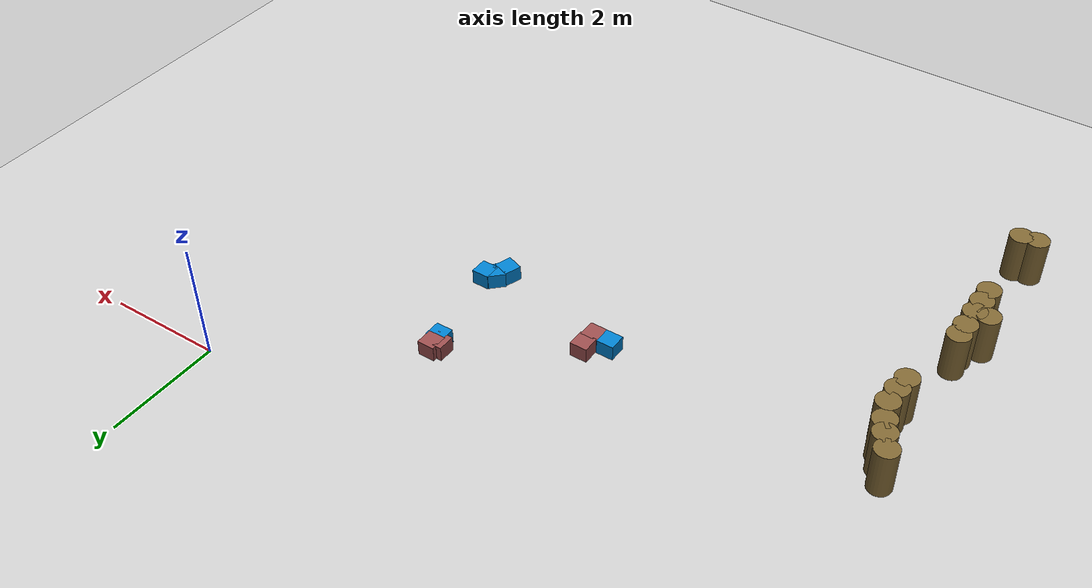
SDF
<sdf version="1.6">
 <world name="default">
  <model name="ground_plane">
   <static>1</static>
   <link name="link">
    <collision name="collision">
     <geometry><plane><normal>0 0 1</normal><size>100 100</size></plane></geometry>
     <surface><friction><ode><mu>100</mu><mu2>50</mu2></ode></friction></surface>
    </collision>
    <visual name="visual">
     <cast_shadows>0</cast_shadows>
     <geometry><plane><normal>0 0 1</normal><size>100 100</size></plane></geometry>
     <material>
      <script><uri>file://media/materials/scripts/gazebo.material</uri><name>Gazebo/Grey</name></script>
     </material>
    </visual>
   </link>
  </model>
  <model name="mini_cylinder_0_clone_0_clone_clone_clone_clone_3_clone_14">
   <link name="link">
    <inertial>
     <mass>1</mass>
     <inertia><ixx>0.145833</ixx><ixy>0</ixy><ixz>0</ixz><iyy>0.145833</iyy><iyz>0</iyz><izz>0.125</izz></inertia>
    </inertial>
    <visual name="visual">
     <geometry><cylinder><radius>0.2</radius><length>0.8</length></cylinder></geometry>
     <material>
      <script><name>Gazebo/Grey</name><uri>file://media/materials/scripts/gazebo.material</uri></script>
      <shader type="vertex"><normal_map>__default__</normal_map></shader>
      <ambient>0.5 0.4 0.2 1</ambient>
      <diffuse>0.7 0.7 0.7 1</diffuse>
      <specular>0.01 0.01 0.01 1</specular>
      <emissive>0 0 0 1</emissive>
     </material>
    </visual>
    <collision name="collision">
     <geometry><cylinder><radius>0.2</radius><length>0.8</length></cylinder></geometry>
     <surface>
      <friction>
       <ode><mu>1</mu><mu2>1</mu2><fdir1>0 0 0</fdir1><slip1>0</slip1><slip2>0</slip2></ode>
       <torsional>
        <coefficient>1</coefficient>
        <patch_radius>0</patch_radius>
        <surface_radius>0</surface_radius>
        <use_patch_radius>1</use_patch_radius>
        <ode><slip>0</slip></ode>
       </torsional>
      </friction>
      <bounce><restitution_coefficient>0</restitution_coefficient><threshold>1e+06</threshold></bounce>
      <contact>
       <collide_without_contact>0</collide_without_contact>
       <collide_without_contact_bitmask>1</collide_without_contact_bitmask>
       <collide_bitmask>1</collide_bitmask>
       <ode>
        <soft_cfm>0</soft_cfm>
        <soft_erp>0.2</soft_erp>
        <kp>1e+13</kp>
        <kd>1</kd>
        <max_vel>0.01</max_vel>
        <min_depth>0</min_depth>
       </ode>
       <bullet>
        <split_impulse>1</split_impulse>
        <split_impulse_penetration_threshold>-0.01</split_impulse_penetration_threshold>
        <soft_cfm>0</soft_cfm>
        <soft_erp>0.2</soft_erp>
        <kp>1e+13</kp>
        <kd>1</kd>
       </bullet>
      </contact>
     </surface>
    </collision>
   </link>
   <static>1</static>
   <pose>-9.87176 -3.33436 0.4 0 -0 0</pose>
  </model>
  <model name="mini_cylinder_0_clone_0_clone_clone_clone_clone_3_clone_15">
   <link name="link">
    <inertial>
     <mass>1</mass>
     <inertia><ixx>0.145833</ixx><ixy>0</ixy><ixz>0</ixz><iyy>0.145833</iyy><iyz>0</iyz><izz>0.125</izz></inertia>
    </inertial>
    <visual name="visual">
     <geometry><cylinder><radius>0.2</radius><length>0.8</length></cylinder></geometry>
     <material>
      <script><name>Gazebo/Grey</name><uri>file://media/materials/scripts/gazebo.material</uri></script>
      <shader type="vertex"><normal_map>__default__</normal_map></shader>
      <ambient>0.5 0.4 0.2 1</ambient>
      <diffuse>0.7 0.7 0.7 1</diffuse>
      <specular>0.01 0.01 0.01 1</specular>
      <emissive>0 0 0 1</emissive>
     </material>
    </visual>
    <collision name="collision">
     <geometry><cylinder><radius>0.2</radius><length>0.8</length></cylinder></geometry>
     <surface>
      <friction>
       <ode><mu>1</mu><mu2>1</mu2><fdir1>0 0 0</fdir1><slip1>0</slip1><slip2>0</slip2></ode>
       <torsional>
        <coefficient>1</coefficient>
        <patch_radius>0</patch_radius>
        <surface_radius>0</surface_radius>
        <use_patch_radius>1</use_patch_radius>
        <ode><slip>0</slip></ode>
       </torsional>
      </friction>
      <bounce><restitution_coefficient>0</restitution_coefficient><threshold>1e+06</threshold></bounce>
      <contact>
       <collide_without_contact>0</collide_without_contact>
       <collide_without_contact_bitmask>1</collide_without_contact_bitmask>
       <collide_bitmask>1</collide_bitmask>
       <ode>
        <soft_cfm>0</soft_cfm>
        <soft_erp>0.2</soft_erp>
        <kp>1e+13</kp>
        <kd>1</kd>
        <max_vel>0.01</max_vel>
        <min_depth>0</min_depth>
       </ode>
       <bullet>
        <split_impulse>1</split_impulse>
        <split_impulse_penetration_threshold>-0.01</split_impulse_penetration_threshold>
        <soft_cfm>0</soft_cfm>
        <soft_erp>0.2</soft_erp>
        <kp>1e+13</kp>
        <kd>1</kd>
       </bullet>
      </contact>
     </surface>
    </collision>
   </link>
   <static>1</static>
   <pose>-9.71455 -3.60876 0.4 0 -0 0</pose>
  </model>
  <model name="mini_cylinder_0_clone_0_clone_clone_clone_clone_3_clone_16">
   <link name="link">
    <inertial>
     <mass>1</mass>
     <inertia><ixx>0.145833</ixx><ixy>0</ixy><ixz>0</ixz><iyy>0.145833</iyy><iyz>0</iyz><izz>0.125</izz></inertia>
    </inertial>
    <visual name="visual">
     <geometry><cylinder><radius>0.2</radius><length>0.8</length></cylinder></geometry>
     <material>
      <script><name>Gazebo/Grey</name><uri>file://media/materials/scripts/gazebo.material</uri></script>
      <shader type="vertex"><normal_map>__default__</normal_map></shader>
      <ambient>0.5 0.4 0.2 1</ambient>
      <diffuse>0.7 0.7 0.7 1</diffuse>
      <specular>0.01 0.01 0.01 1</specular>
      <emissive>0 0 0 1</emissive>
     </material>
    </visual>
    <collision name="collision">
     <geometry><cylinder><radius>0.2</radius><length>0.8</length></cylinder></geometry>
     <surface>
      <friction>
       <ode><mu>1</mu><mu2>1</mu2><fdir1>0 0 0</fdir1><slip1>0</slip1><slip2>0</slip2></ode>
       <torsional>
        <coefficient>1</coefficient>
        <patch_radius>0</patch_radius>
        <surface_radius>0</surface_radius>
        <use_patch_radius>1</use_patch_radius>
        <ode><slip>0</slip></ode>
       </torsional>
      </friction>
      <bounce><restitution_coefficient>0</restitution_coefficient><threshold>1e+06</threshold></bounce>
      <contact>
       <collide_without_contact>0</collide_without_contact>
       <collide_without_contact_bitmask>1</collide_without_contact_bitmask>
       <collide_bitmask>1</collide_bitmask>
       <ode>
        <soft_cfm>0</soft_cfm>
        <soft_erp>0.2</soft_erp>
        <kp>1e+13</kp>
        <kd>1</kd>
        <max_vel>0.01</max_vel>
        <min_depth>0</min_depth>
       </ode>
       <bullet>
        <split_impulse>1</split_impulse>
        <split_impulse_penetration_threshold>-0.01</split_impulse_penetration_threshold>
        <soft_cfm>0</soft_cfm>
        <soft_erp>0.2</soft_erp>
        <kp>1e+13</kp>
        <kd>1</kd>
       </bullet>
      </contact>
     </surface>
    </collision>
   </link>
   <static>1</static>
   <pose>-9.59735 -3.84457 0.4 0 -0 0</pose>
  </model>
  <model name="mini_cylinder_0_clone_0_clone_clone_clone_clone_3_clone_17">
   <link name="link">
    <inertial>
     <mass>1</mass>
     <inertia><ixx>0.145833</ixx><ixy>0</ixy><ixz>0</ixz><iyy>0.145833</iyy><iyz>0</iyz><izz>0.125</izz></inertia>
    </inertial>
    <visual name="visual">
     <geometry><cylinder><radius>0.2</radius><length>0.8</length></cylinder></geometry>
     <material>
      <script><name>Gazebo/Grey</name><uri>file://media/materials/scripts/gazebo.material</uri></script>
      <shader type="vertex"><normal_map>__default__</normal_map></shader>
      <ambient>0.5 0.4 0.2 1</ambient>
      <diffuse>0.7 0.7 0.7 1</diffuse>
      <specular>0.01 0.01 0.01 1</specular>
      <emissive>0 0 0 1</emissive>
     </material>
    </visual>
    <collision name="collision">
     <geometry><cylinder><radius>0.2</radius><length>0.8</length></cylinder></geometry>
     <surface>
      <friction>
       <ode><mu>1</mu><mu2>1</mu2><fdir1>0 0 0</fdir1><slip1>0</slip1><slip2>0</slip2></ode>
       <torsional>
        <coefficient>1</coefficient>
        <patch_radius>0</patch_radius>
        <surface_radius>0</surface_radius>
        <use_patch_radius>1</use_patch_radius>
        <ode><slip>0</slip></ode>
       </torsional>
      </friction>
      <bounce><restitution_coefficient>0</restitution_coefficient><threshold>1e+06</threshold></bounce>
      <contact>
       <collide_without_contact>0</collide_without_contact>
       <collide_without_contact_bitmask>1</collide_without_contact_bitmask>
       <collide_bitmask>1</collide_bitmask>
       <ode>
        <soft_cfm>0</soft_cfm>
        <soft_erp>0.2</soft_erp>
        <kp>1e+13</kp>
        <kd>1</kd>
        <max_vel>0.01</max_vel>
        <min_depth>0</min_depth>
       </ode>
       <bullet>
        <split_impulse>1</split_impulse>
        <split_impulse_penetration_threshold>-0.01</split_impulse_penetration_threshold>
        <soft_cfm>0</soft_cfm>
        <soft_erp>0.2</soft_erp>
        <kp>1e+13</kp>
        <kd>1</kd>
       </bullet>
      </contact>
     </surface>
    </collision>
   </link>
   <static>1</static>
   <pose>-9.47945 -4.1983 0.4 0 -0 0</pose>
  </model>
  <model name="mini_cylinder_0_clone_0_clone_clone_clone_clone_3_clone_18">
   <link name="link">
    <inertial>
     <mass>1</mass>
     <inertia><ixx>0.145833</ixx><ixy>0</ixy><ixz>0</ixz><iyy>0.145833</iyy><iyz>0</iyz><izz>0.125</izz></inertia>
    </inertial>
    <visual name="visual">
     <geometry><cylinder><radius>0.2</radius><length>0.8</length></cylinder></geometry>
     <material>
      <script><name>Gazebo/Grey</name><uri>file://media/materials/scripts/gazebo.material</uri></script>
      <shader type="vertex"><normal_map>__default__</normal_map></shader>
      <ambient>0.5 0.4 0.2 1</ambient>
      <diffuse>0.7 0.7 0.7 1</diffuse>
      <specular>0.01 0.01 0.01 1</specular>
      <emissive>0 0 0 1</emissive>
     </material>
    </visual>
    <collision name="collision">
     <geometry><cylinder><radius>0.2</radius><length>0.8</length></cylinder></geometry>
     <surface>
      <friction>
       <ode><mu>1</mu><mu2>1</mu2><fdir1>0 0 0</fdir1><slip1>0</slip1><slip2>0</slip2></ode>
       <torsional>
        <coefficient>1</coefficient>
        <patch_radius>0</patch_radius>
        <surface_radius>0</surface_radius>
        <use_patch_radius>1</use_patch_radius>
        <ode><slip>0</slip></ode>
       </torsional>
      </friction>
      <bounce><restitution_coefficient>0</restitution_coefficient><threshold>1e+06</threshold></bounce>
      <contact>
       <collide_without_contact>0</collide_without_contact>
       <collide_without_contact_bitmask>1</collide_without_contact_bitmask>
       <collide_bitmask>1</collide_bitmask>
       <ode>
        <soft_cfm>0</soft_cfm>
        <soft_erp>0.2</soft_erp>
        <kp>1e+13</kp>
        <kd>1</kd>
        <max_vel>0.01</max_vel>
        <min_depth>0</min_depth>
       </ode>
       <bullet>
        <split_impulse>1</split_impulse>
        <split_impulse_penetration_threshold>-0.01</split_impulse_penetration_threshold>
        <soft_cfm>0</soft_cfm>
        <soft_erp>0.2</soft_erp>
        <kp>1e+13</kp>
        <kd>1</kd>
       </bullet>
      </contact>
     </surface>
    </collision>
   </link>
   <static>1</static>
   <pose>-9.47945 -4.512 0.4 0 -0 0</pose>
  </model>
  <model name="mini_cylinder_0_clone_0_clone_clone_clone_clone_3_clone_20_clone_105">
   <link name="link">
    <inertial>
     <mass>1</mass>
     <inertia><ixx>0.145833</ixx><ixy>0</ixy><ixz>0</ixz><iyy>0.145833</iyy><iyz>0</iyz><izz>0.125</izz></inertia>
    </inertial>
    <visual name="visual">
     <geometry><cylinder><radius>0.2</radius><length>0.8</length></cylinder></geometry>
     <material>
      <script><name>Gazebo/Grey</name><uri>file://media/materials/scripts/gazebo.material</uri></script>
      <shader type="vertex"><normal_map>__default__</normal_map></shader>
      <ambient>0.5 0.4 0.2 1</ambient>
      <diffuse>0.7 0.7 0.7 1</diffuse>
      <specular>0.01 0.01 0.01 1</specular>
      <emissive>0 0 0 1</emissive>
     </material>
    </visual>
    <collision name="collision">
     <geometry><cylinder><radius>0.2</radius><length>0.8</length></cylinder></geometry>
     <surface>
      <friction>
       <ode><mu>1</mu><mu2>1</mu2><fdir1>0 0 0</fdir1><slip1>0</slip1><slip2>0</slip2></ode>
       <torsional>
        <coefficient>1</coefficient>
        <patch_radius>0</patch_radius>
        <surface_radius>0</surface_radius>
        <use_patch_radius>1</use_patch_radius>
        <ode><slip>0</slip></ode>
       </torsional>
      </friction>
      <bounce><restitution_coefficient>0</restitution_coefficient><threshold>1e+06</threshold></bounce>
      <contact>
       <collide_without_contact>0</collide_without_contact>
       <collide_without_contact_bitmask>1</collide_without_contact_bitmask>
       <collide_bitmask>1</collide_bitmask>
       <ode>
        <soft_cfm>0</soft_cfm>
        <soft_erp>0.2</soft_erp>
        <kp>1e+13</kp>
        <kd>1</kd>
        <max_vel>0.01</max_vel>
        <min_depth>0</min_depth>
       </ode>
       <bullet>
        <split_impulse>1</split_impulse>
        <split_impulse_penetration_threshold>-0.01</split_impulse_penetration_threshold>
        <soft_cfm>0</soft_cfm>
        <soft_erp>0.2</soft_erp>
        <kp>1e+13</kp>
        <kd>1</kd>
       </bullet>
      </contact>
     </surface>
    </collision>
   </link>
   <static>1</static>
   <pose>-9.51001 -4.78474 0.4 0 -0 0</pose>
  </model>
  <model name="mini_cylinder_0_clone_0_clone_clone_clone_clone_3_clone_20_clone_120">
   <link name="link">
    <inertial>
     <mass>1</mass>
     <inertia><ixx>0.145833</ixx><ixy>0</ixy><ixz>0</ixz><iyy>0.145833</iyy><iyz>0</iyz><izz>0.125</izz></inertia>
    </inertial>
    <visual name="visual">
     <geometry><cylinder><radius>0.2</radius><length>0.8</length></cylinder></geometry>
     <material>
      <script><name>Gazebo/Grey</name><uri>file://media/materials/scripts/gazebo.material</uri></script>
      <shader type="vertex"><normal_map>__default__</normal_map></shader>
      <ambient>0.5 0.4 0.2 1</ambient>
      <diffuse>0.7 0.7 0.7 1</diffuse>
      <specular>0.01 0.01 0.01 1</specular>
      <emissive>0 0 0 1</emissive>
     </material>
    </visual>
    <collision name="collision">
     <geometry><cylinder><radius>0.2</radius><length>0.8</length></cylinder></geometry>
     <surface>
      <friction>
       <ode><mu>1</mu><mu2>1</mu2><fdir1>0 0 0</fdir1><slip1>0</slip1><slip2>0</slip2></ode>
       <torsional>
        <coefficient>1</coefficient>
        <patch_radius>0</patch_radius>
        <surface_radius>0</surface_radius>
        <use_patch_radius>1</use_patch_radius>
        <ode><slip>0</slip></ode>
       </torsional>
      </friction>
      <bounce><restitution_coefficient>0</restitution_coefficient><threshold>1e+06</threshold></bounce>
      <contact>
       <collide_without_contact>0</collide_without_contact>
       <collide_without_contact_bitmask>1</collide_without_contact_bitmask>
       <collide_bitmask>1</collide_bitmask>
       <ode>
        <soft_cfm>0</soft_cfm>
        <soft_erp>0.2</soft_erp>
        <kp>1e+13</kp>
        <kd>1</kd>
        <max_vel>0.01</max_vel>
        <min_depth>0</min_depth>
       </ode>
       <bullet>
        <split_impulse>1</split_impulse>
        <split_impulse_penetration_threshold>-0.01</split_impulse_penetration_threshold>
        <soft_cfm>0</soft_cfm>
        <soft_erp>0.2</soft_erp>
        <kp>1e+13</kp>
        <kd>1</kd>
       </bullet>
      </contact>
     </surface>
    </collision>
   </link>
   <static>1</static>
   <pose>-9.97185 -6.71021 0.4 0 -0 0</pose>
  </model>
  <model name="mini_cylinder_0_clone_0_clone_clone_clone_clone_3_clone_20_clone_121">
   <link name="link">
    <inertial>
     <mass>1</mass>
     <inertia><ixx>0.145833</ixx><ixy>0</ixy><ixz>0</ixz><iyy>0.145833</iyy><iyz>0</iyz><izz>0.125</izz></inertia>
    </inertial>
    <visual name="visual">
     <geometry><cylinder><radius>0.2</radius><length>0.8</length></cylinder></geometry>
     <material>
      <script><name>Gazebo/Grey</name><uri>file://media/materials/scripts/gazebo.material</uri></script>
      <shader type="vertex"><normal_map>__default__</normal_map></shader>
      <ambient>0.5 0.4 0.2 1</ambient>
      <diffuse>0.7 0.7 0.7 1</diffuse>
      <specular>0.01 0.01 0.01 1</specular>
      <emissive>0 0 0 1</emissive>
     </material>
    </visual>
    <collision name="collision">
     <geometry><cylinder><radius>0.2</radius><length>0.8</length></cylinder></geometry>
     <surface>
      <friction>
       <ode><mu>1</mu><mu2>1</mu2><fdir1>0 0 0</fdir1><slip1>0</slip1><slip2>0</slip2></ode>
       <torsional>
        <coefficient>1</coefficient>
        <patch_radius>0</patch_radius>
        <surface_radius>0</surface_radius>
        <use_patch_radius>1</use_patch_radius>
        <ode><slip>0</slip></ode>
       </torsional>
      </friction>
      <bounce><restitution_coefficient>0</restitution_coefficient><threshold>1e+06</threshold></bounce>
      <contact>
       <collide_without_contact>0</collide_without_contact>
       <collide_without_contact_bitmask>1</collide_without_contact_bitmask>
       <collide_bitmask>1</collide_bitmask>
       <ode>
        <soft_cfm>0</soft_cfm>
        <soft_erp>0.2</soft_erp>
        <kp>1e+13</kp>
        <kd>1</kd>
        <max_vel>0.01</max_vel>
        <min_depth>0</min_depth>
       </ode>
       <bullet>
        <split_impulse>1</split_impulse>
        <split_impulse_penetration_threshold>-0.01</split_impulse_penetration_threshold>
        <soft_cfm>0</soft_cfm>
        <soft_erp>0.2</soft_erp>
        <kp>1e+13</kp>
        <kd>1</kd>
       </bullet>
      </contact>
     </surface>
    </collision>
   </link>
   <static>1</static>
   <pose>-9.74426 -6.70637 0.4 0 -0 0</pose>
  </model>
  <model name="mini_cylinder_0_clone_0_clone_clone_clone_clone_3_clone_20_clone_122">
   <link name="link">
    <inertial>
     <mass>1</mass>
     <inertia><ixx>0.145833</ixx><ixy>0</ixy><ixz>0</ixz><iyy>0.145833</iyy><iyz>0</iyz><izz>0.125</izz></inertia>
    </inertial>
    <visual name="visual">
     <geometry><cylinder><radius>0.2</radius><length>0.8</length></cylinder></geometry>
     <material>
      <script><name>Gazebo/Grey</name><uri>file://media/materials/scripts/gazebo.material</uri></script>
      <shader type="vertex"><normal_map>__default__</normal_map></shader>
      <ambient>0.5 0.4 0.2 1</ambient>
      <diffuse>0.7 0.7 0.7 1</diffuse>
      <specular>0.01 0.01 0.01 1</specular>
      <emissive>0 0 0 1</emissive>
     </material>
    </visual>
    <collision name="collision">
     <geometry><cylinder><radius>0.2</radius><length>0.8</length></cylinder></geometry>
     <surface>
      <friction>
       <ode><mu>1</mu><mu2>1</mu2><fdir1>0 0 0</fdir1><slip1>0</slip1><slip2>0</slip2></ode>
       <torsional>
        <coefficient>1</coefficient>
        <patch_radius>0</patch_radius>
        <surface_radius>0</surface_radius>
        <use_patch_radius>1</use_patch_radius>
        <ode><slip>0</slip></ode>
       </torsional>
      </friction>
      <bounce><restitution_coefficient>0</restitution_coefficient><threshold>1e+06</threshold></bounce>
      <contact>
       <collide_without_contact>0</collide_without_contact>
       <collide_without_contact_bitmask>1</collide_without_contact_bitmask>
       <collide_bitmask>1</collide_bitmask>
       <ode>
        <soft_cfm>0</soft_cfm>
        <soft_erp>0.2</soft_erp>
        <kp>1e+13</kp>
        <kd>1</kd>
        <max_vel>0.01</max_vel>
        <min_depth>0</min_depth>
       </ode>
       <bullet>
        <split_impulse>1</split_impulse>
        <split_impulse_penetration_threshold>-0.01</split_impulse_penetration_threshold>
        <soft_cfm>0</soft_cfm>
        <soft_erp>0.2</soft_erp>
        <kp>1e+13</kp>
        <kd>1</kd>
       </bullet>
      </contact>
     </surface>
    </collision>
   </link>
   <static>1</static>
   <pose>-9.7542 -6.08907 0.4 0 -0 0</pose>
  </model>
  <model name="mini_cylinder_0_clone_0_clone_clone_clone_clone_3_clone_20_clone_123">
   <link name="link">
    <inertial>
     <mass>1</mass>
     <inertia><ixx>0.145833</ixx><ixy>0</ixy><ixz>0</ixz><iyy>0.145833</iyy><iyz>0</iyz><izz>0.125</izz></inertia>
    </inertial>
    <visual name="visual">
     <geometry><cylinder><radius>0.2</radius><length>0.8</length></cylinder></geometry>
     <material>
      <script><name>Gazebo/Grey</name><uri>file://media/materials/scripts/gazebo.material</uri></script>
      <shader type="vertex"><normal_map>__default__</normal_map></shader>
      <ambient>0.5 0.4 0.2 1</ambient>
      <diffuse>0.7 0.7 0.7 1</diffuse>
      <specular>0.01 0.01 0.01 1</specular>
      <emissive>0 0 0 1</emissive>
     </material>
    </visual>
    <collision name="collision">
     <geometry><cylinder><radius>0.2</radius><length>0.8</length></cylinder></geometry>
     <surface>
      <friction>
       <ode><mu>1</mu><mu2>1</mu2><fdir1>0 0 0</fdir1><slip1>0</slip1><slip2>0</slip2></ode>
       <torsional>
        <coefficient>1</coefficient>
        <patch_radius>0</patch_radius>
        <surface_radius>0</surface_radius>
        <use_patch_radius>1</use_patch_radius>
        <ode><slip>0</slip></ode>
       </torsional>
      </friction>
      <bounce><restitution_coefficient>0</restitution_coefficient><threshold>1e+06</threshold></bounce>
      <contact>
       <collide_without_contact>0</collide_without_contact>
       <collide_without_contact_bitmask>1</collide_without_contact_bitmask>
       <collide_bitmask>1</collide_bitmask>
       <ode>
        <soft_cfm>0</soft_cfm>
        <soft_erp>0.2</soft_erp>
        <kp>1e+13</kp>
        <kd>1</kd>
        <max_vel>0.01</max_vel>
        <min_depth>0</min_depth>
       </ode>
       <bullet>
        <split_impulse>1</split_impulse>
        <split_impulse_penetration_threshold>-0.01</split_impulse_penetration_threshold>
        <soft_cfm>0</soft_cfm>
        <soft_erp>0.2</soft_erp>
        <kp>1e+13</kp>
        <kd>1</kd>
       </bullet>
      </contact>
     </surface>
    </collision>
   </link>
   <static>1</static>
   <pose>-9.75035 -6.34861 0.4 0 -0 0</pose>
  </model>
  <model name="mini_cylinder_0_clone_0_clone_clone_clone_clone_3_clone_20_clone_124">
   <link name="link">
    <inertial>
     <mass>1</mass>
     <inertia><ixx>0.145833</ixx><ixy>0</ixy><ixz>0</ixz><iyy>0.145833</iyy><iyz>0</iyz><izz>0.125</izz></inertia>
    </inertial>
    <visual name="visual">
     <geometry><cylinder><radius>0.2</radius><length>0.8</length></cylinder></geometry>
     <material>
      <script><name>Gazebo/Grey</name><uri>file://media/materials/scripts/gazebo.material</uri></script>
      <shader type="vertex"><normal_map>__default__</normal_map></shader>
      <ambient>0.5 0.4 0.2 1</ambient>
      <diffuse>0.7 0.7 0.7 1</diffuse>
      <specular>0.01 0.01 0.01 1</specular>
      <emissive>0 0 0 1</emissive>
     </material>
    </visual>
    <collision name="collision">
     <geometry><cylinder><radius>0.2</radius><length>0.8</length></cylinder></geometry>
     <surface>
      <friction>
       <ode><mu>1</mu><mu2>1</mu2><fdir1>0 0 0</fdir1><slip1>0</slip1><slip2>0</slip2></ode>
       <torsional>
        <coefficient>1</coefficient>
        <patch_radius>0</patch_radius>
        <surface_radius>0</surface_radius>
        <use_patch_radius>1</use_patch_radius>
        <ode><slip>0</slip></ode>
       </torsional>
      </friction>
      <bounce><restitution_coefficient>0</restitution_coefficient><threshold>1e+06</threshold></bounce>
      <contact>
       <collide_without_contact>0</collide_without_contact>
       <collide_without_contact_bitmask>1</collide_without_contact_bitmask>
       <collide_bitmask>1</collide_bitmask>
       <ode>
        <soft_cfm>0</soft_cfm>
        <soft_erp>0.2</soft_erp>
        <kp>1e+13</kp>
        <kd>1</kd>
        <max_vel>0.01</max_vel>
        <min_depth>0</min_depth>
       </ode>
       <bullet>
        <split_impulse>1</split_impulse>
        <split_impulse_penetration_threshold>-0.01</split_impulse_penetration_threshold>
        <soft_cfm>0</soft_cfm>
        <soft_erp>0.2</soft_erp>
        <kp>1e+13</kp>
        <kd>1</kd>
       </bullet>
      </contact>
     </surface>
    </collision>
   </link>
   <static>1</static>
   <pose>-9.73964 -6.99846 0.4 0 -0 0</pose>
  </model>
  <model name="mini_cylinder_0_clone_0_clone_clone_clone_clone_3_clone_20_clone_125">
   <link name="link">
    <inertial>
     <mass>1</mass>
     <inertia><ixx>0.145833</ixx><ixy>0</ixy><ixz>0</ixz><iyy>0.145833</iyy><iyz>0</iyz><izz>0.125</izz></inertia>
    </inertial>
    <visual name="visual">
     <geometry><cylinder><radius>0.2</radius><length>0.8</length></cylinder></geometry>
     <material>
      <script><name>Gazebo/Grey</name><uri>file://media/materials/scripts/gazebo.material</uri></script>
      <shader type="vertex"><normal_map>__default__</normal_map></shader>
      <ambient>0.5 0.4 0.2 1</ambient>
      <diffuse>0.7 0.7 0.7 1</diffuse>
      <specular>0.01 0.01 0.01 1</specular>
      <emissive>0 0 0 1</emissive>
     </material>
    </visual>
    <collision name="collision">
     <geometry><cylinder><radius>0.2</radius><length>0.8</length></cylinder></geometry>
     <surface>
      <friction>
       <ode><mu>1</mu><mu2>1</mu2><fdir1>0 0 0</fdir1><slip1>0</slip1><slip2>0</slip2></ode>
       <torsional>
        <coefficient>1</coefficient>
        <patch_radius>0</patch_radius>
        <surface_radius>0</surface_radius>
        <use_patch_radius>1</use_patch_radius>
        <ode><slip>0</slip></ode>
       </torsional>
      </friction>
      <bounce><restitution_coefficient>0</restitution_coefficient><threshold>1e+06</threshold></bounce>
      <contact>
       <collide_without_contact>0</collide_without_contact>
       <collide_without_contact_bitmask>1</collide_without_contact_bitmask>
       <collide_bitmask>1</collide_bitmask>
       <ode>
        <soft_cfm>0</soft_cfm>
        <soft_erp>0.2</soft_erp>
        <kp>1e+13</kp>
        <kd>1</kd>
        <max_vel>0.01</max_vel>
        <min_depth>0</min_depth>
       </ode>
       <bullet>
        <split_impulse>1</split_impulse>
        <split_impulse_penetration_threshold>-0.01</split_impulse_penetration_threshold>
        <soft_cfm>0</soft_cfm>
        <soft_erp>0.2</soft_erp>
        <kp>1e+13</kp>
        <kd>1</kd>
       </bullet>
      </contact>
     </surface>
    </collision>
   </link>
   <static>1</static>
   <pose>-9.735 -7.29075 0.4 0 -0 0</pose>
  </model>
  <model name="mini_cylinder_0_clone_0_clone_clone_clone_clone_3_clone_20_clone_131">
   <link name="link">
    <inertial>
     <mass>1</mass>
     <inertia><ixx>0.145833</ixx><ixy>0</ixy><ixz>0</ixz><iyy>0.145833</iyy><iyz>0</iyz><izz>0.125</izz></inertia>
    </inertial>
    <visual name="visual">
     <geometry><cylinder><radius>0.2</radius><length>0.8</length></cylinder></geometry>
     <material>
      <script><name>Gazebo/Grey</name><uri>file://media/materials/scripts/gazebo.material</uri></script>
      <shader type="vertex"><normal_map>__default__</normal_map></shader>
      <ambient>0.5 0.4 0.2 1</ambient>
      <diffuse>0.7 0.7 0.7 1</diffuse>
      <specular>0.01 0.01 0.01 1</specular>
      <emissive>0 0 0 1</emissive>
     </material>
    </visual>
    <collision name="collision">
     <geometry><cylinder><radius>0.2</radius><length>0.8</length></cylinder></geometry>
     <surface>
      <friction>
       <ode><mu>1</mu><mu2>1</mu2><fdir1>0 0 0</fdir1><slip1>0</slip1><slip2>0</slip2></ode>
       <torsional>
        <coefficient>1</coefficient>
        <patch_radius>0</patch_radius>
        <surface_radius>0</surface_radius>
        <use_patch_radius>1</use_patch_radius>
        <ode><slip>0</slip></ode>
       </torsional>
      </friction>
      <bounce><restitution_coefficient>0</restitution_coefficient><threshold>1e+06</threshold></bounce>
      <contact>
       <collide_without_contact>0</collide_without_contact>
       <collide_without_contact_bitmask>1</collide_without_contact_bitmask>
       <collide_bitmask>1</collide_bitmask>
       <ode>
        <soft_cfm>0</soft_cfm>
        <soft_erp>0.2</soft_erp>
        <kp>1e+13</kp>
        <kd>1</kd>
        <max_vel>0.01</max_vel>
        <min_depth>0</min_depth>
       </ode>
       <bullet>
        <split_impulse>1</split_impulse>
        <split_impulse_penetration_threshold>-0.01</split_impulse_penetration_threshold>
        <soft_cfm>0</soft_cfm>
        <soft_erp>0.2</soft_erp>
        <kp>1e+13</kp>
        <kd>1</kd>
       </bullet>
      </contact>
     </surface>
    </collision>
   </link>
   <static>1</static>
   <pose>-9.64567 -8.84913 0.4 0 -0 0</pose>
  </model>
  <model name="mini_cylinder_0_clone_0_clone_clone_clone_clone_3_clone_20_clone_132">
   <link name="link">
    <inertial>
     <mass>1</mass>
     <inertia><ixx>0.145833</ixx><ixy>0</ixy><ixz>0</ixz><iyy>0.145833</iyy><iyz>0</iyz><izz>0.125</izz></inertia>
    </inertial>
    <visual name="visual">
     <geometry><cylinder><radius>0.2</radius><length>0.8</length></cylinder></geometry>
     <material>
      <script><name>Gazebo/Grey</name><uri>file://media/materials/scripts/gazebo.material</uri></script>
      <shader type="vertex"><normal_map>__default__</normal_map></shader>
      <ambient>0.5 0.4 0.2 1</ambient>
      <diffuse>0.7 0.7 0.7 1</diffuse>
      <specular>0.01 0.01 0.01 1</specular>
      <emissive>0 0 0 1</emissive>
     </material>
    </visual>
    <collision name="collision">
     <geometry><cylinder><radius>0.2</radius><length>0.8</length></cylinder></geometry>
     <surface>
      <friction>
       <ode><mu>1</mu><mu2>1</mu2><fdir1>0 0 0</fdir1><slip1>0</slip1><slip2>0</slip2></ode>
       <torsional>
        <coefficient>1</coefficient>
        <patch_radius>0</patch_radius>
        <surface_radius>0</surface_radius>
        <use_patch_radius>1</use_patch_radius>
        <ode><slip>0</slip></ode>
       </torsional>
      </friction>
      <bounce><restitution_coefficient>0</restitution_coefficient><threshold>1e+06</threshold></bounce>
      <contact>
       <collide_without_contact>0</collide_without_contact>
       <collide_without_contact_bitmask>1</collide_without_contact_bitmask>
       <collide_bitmask>1</collide_bitmask>
       <ode>
        <soft_cfm>0</soft_cfm>
        <soft_erp>0.2</soft_erp>
        <kp>1e+13</kp>
        <kd>1</kd>
        <max_vel>0.01</max_vel>
        <min_depth>0</min_depth>
       </ode>
       <bullet>
        <split_impulse>1</split_impulse>
        <split_impulse_penetration_threshold>-0.01</split_impulse_penetration_threshold>
        <soft_cfm>0</soft_cfm>
        <soft_erp>0.2</soft_erp>
        <kp>1e+13</kp>
        <kd>1</kd>
       </bullet>
      </contact>
     </surface>
    </collision>
   </link>
   <static>1</static>
   <pose>-9.90495 -8.88523 0.4 0 -0 0</pose>
  </model>
  <model name="unit_box_0.3_red_clone_clone_6">
   <link name="link">
    <inertial>
     <mass>1</mass>
     <inertia>
      <ixx>0.166667</ixx>
      <ixy>0</ixy>
      <ixz>0</ixz>
      <iyy>0.166667</iyy>
      <iyz>0</iyz>
      <izz>0.166667</izz>
     </inertia>
    </inertial>
    <visual name="visual">
     <geometry><box><size>0.3 0.3 0.5</size></box></geometry>
     <material>
      <script><name>Gazebo/Grey</name><uri>file://media/materials/scripts/gazebo.material</uri></script>
      <shader type="pixel"><normal_map>__default__</normal_map></shader>
      <ambient>0.6 0.3 0.3 1</ambient>
      <diffuse>0.7 0.7 0.7 1</diffuse>
      <specular>0.01 0.01 0.01 1</specular>
      <emissive>0 0 0 1</emissive>
     </material>
    </visual>
    <collision name="collision">
     <geometry><box><size>0.3 0.3 0.5</size></box></geometry>
     <surface>
      <friction>
       <ode><mu>1</mu><mu2>1</mu2><fdir1>0 0 0</fdir1><slip1>0</slip1><slip2>0</slip2></ode>
       <torsional>
        <coefficient>1</coefficient>
        <patch_radius>0</patch_radius>
        <surface_radius>0</surface_radius>
        <use_patch_radius>1</use_patch_radius>
        <ode><slip>0</slip></ode>
       </torsional>
      </friction>
      <bounce><restitution_coefficient>0</restitution_coefficient><threshold>1e+06</threshold></bounce>
      <contact>
       <collide_without_contact>0</collide_without_contact>
       <collide_without_contact_bitmask>1</collide_without_contact_bitmask>
       <collide_bitmask>1</collide_bitmask>
       <ode>
        <soft_cfm>0</soft_cfm>
        <soft_erp>0.2</soft_erp>
        <kp>1e+13</kp>
        <kd>1</kd>
        <max_vel>0.01</max_vel>
        <min_depth>0</min_depth>
       </ode>
       <bullet>
        <split_impulse>1</split_impulse>
        <split_impulse_penetration_threshold>-0.01</split_impulse_penetration_threshold>
        <soft_cfm>0</soft_cfm>
        <soft_erp>0.2</soft_erp>
        <kp>1e+13</kp>
        <kd>1</kd>
       </bullet>
      </contact>
     </surface>
    </collision>
   </link>
   <static>0</static>
   <pose>-2.86917 -1.95651 0 0 -0 0</pose>
  </model>
  <model name="unit_box_0.3_red_clone_clone_7">
   <link name="link">
    <inertial>
     <mass>1</mass>
     <inertia>
      <ixx>0.166667</ixx>
      <ixy>0</ixy>
      <ixz>0</ixz>
      <iyy>0.166667</iyy>
      <iyz>0</iyz>
      <izz>0.166667</izz>
     </inertia>
    </inertial>
    <visual name="visual">
     <geometry><box><size>0.3 0.3 0.5</size></box></geometry>
     <material>
      <script><name>Gazebo/Grey</name><uri>file://media/materials/scripts/gazebo.material</uri></script>
      <shader type="pixel"><normal_map>__default__</normal_map></shader>
      <ambient>0.6 0.3 0.3 1</ambient>
      <diffuse>0.7 0.7 0.7 1</diffuse>
      <specular>0.01 0.01 0.01 1</specular>
      <emissive>0 0 0 1</emissive>
     </material>
    </visual>
    <collision name="collision">
     <geometry><box><size>0.3 0.3 0.5</size></box></geometry>
     <surface>
      <friction>
       <ode><mu>1</mu><mu2>1</mu2><fdir1>0 0 0</fdir1><slip1>0</slip1><slip2>0</slip2></ode>
       <torsional>
        <coefficient>1</coefficient>
        <patch_radius>0</patch_radius>
        <surface_radius>0</surface_radius>
        <use_patch_radius>1</use_patch_radius>
        <ode><slip>0</slip></ode>
       </torsional>
      </friction>
      <bounce><restitution_coefficient>0</restitution_coefficient><threshold>1e+06</threshold></bounce>
      <contact>
       <collide_without_contact>0</collide_without_contact>
       <collide_without_contact_bitmask>1</collide_without_contact_bitmask>
       <collide_bitmask>1</collide_bitmask>
       <ode>
        <soft_cfm>0</soft_cfm>
        <soft_erp>0.2</soft_erp>
        <kp>1e+13</kp>
        <kd>1</kd>
        <max_vel>0.01</max_vel>
        <min_depth>0</min_depth>
       </ode>
       <bullet>
        <split_impulse>1</split_impulse>
        <split_impulse_penetration_threshold>-0.01</split_impulse_penetration_threshold>
        <soft_cfm>0</soft_cfm>
        <soft_erp>0.2</soft_erp>
        <kp>1e+13</kp>
        <kd>1</kd>
       </bullet>
      </contact>
     </surface>
    </collision>
   </link>
   <static>0</static>
   <pose>-2.96181 -2.02701 0 0 -0 0</pose>
  </model>
  <model name="unit_box_0.3_grue_clone">
   <link name="link">
    <inertial>
     <mass>1</mass>
     <inertia>
      <ixx>0.166667</ixx>
      <ixy>0</ixy>
      <ixz>0</ixz>
      <iyy>0.166667</iyy>
      <iyz>0</iyz>
      <izz>0.166667</izz>
     </inertia>
    </inertial>
    <visual name="visual">
     <geometry><box><size>0.3 0.3 0.5</size></box></geometry>
     <material>
      <script><name>Gazebo/Grey</name><uri>file://media/materials/scripts/gazebo.material</uri></script>
      <shader type="pixel"><normal_map>__default__</normal_map></shader>
      <ambient>0 0.5 0.8 1</ambient>
      <diffuse>0.7 0.7 0.7 1</diffuse>
      <specular>0.01 0.01 0.01 1</specular>
      <emissive>0 0 0 1</emissive>
     </material>
    </visual>
    <collision name="collision">
     <geometry><box><size>0.3 0.3 0.5</size></box></geometry>
     <surface>
      <friction>
       <ode><mu>1</mu><mu2>1</mu2><fdir1>0 0 0</fdir1><slip1>0</slip1><slip2>0</slip2></ode>
       <torsional>
        <coefficient>1</coefficient>
        <patch_radius>0</patch_radius>
        <surface_radius>0</surface_radius>
        <use_patch_radius>1</use_patch_radius>
        <ode><slip>0</slip></ode>
       </torsional>
      </friction>
      <bounce><restitution_coefficient>0</restitution_coefficient><threshold>1e+06</threshold></bounce>
      <contact>
       <collide_without_contact>0</collide_without_contact>
       <collide_without_contact_bitmask>1</collide_without_contact_bitmask>
       <collide_bitmask>1</collide_bitmask>
       <ode>
        <soft_cfm>0</soft_cfm>
        <soft_erp>0.2</soft_erp>
        <kp>1e+13</kp>
        <kd>1</kd>
        <max_vel>0.01</max_vel>
        <min_depth>0</min_depth>
       </ode>
       <bullet>
        <split_impulse>1</split_impulse>
        <split_impulse_penetration_threshold>-0.01</split_impulse_penetration_threshold>
        <soft_cfm>0</soft_cfm>
        <soft_erp>0.2</soft_erp>
        <kp>1e+13</kp>
        <kd>1</kd>
       </bullet>
      </contact>
     </surface>
    </collision>
   </link>
   <static>0</static>
   <pose>-2.85606 -2.16597 0 0 -0 0</pose>
  </model>
  <model name="unit_box_0.3_grue_clone_3">
   <link name="link">
    <inertial>
     <mass>1</mass>
     <inertia>
      <ixx>0.166667</ixx>
      <ixy>0</ixy>
      <ixz>0</ixz>
      <iyy>0.166667</iyy>
      <iyz>0</iyz>
      <izz>0.166667</izz>
     </inertia>
    </inertial>
    <visual name="visual">
     <geometry><box><size>0.3 0.3 0.5</size></box></geometry>
     <material>
      <script><name>Gazebo/Grey</name><uri>file://media/materials/scripts/gazebo.material</uri></script>
      <shader type="pixel"><normal_map>__default__</normal_map></shader>
      <ambient>0 0.5 0.8 1</ambient>
      <diffuse>0.7 0.7 0.7 1</diffuse>
      <specular>0.01 0.01 0.01 1</specular>
      <emissive>0 0 0 1</emissive>
     </material>
    </visual>
    <collision name="collision">
     <geometry><box><size>0.3 0.3 0.5</size></box></geometry>
     <surface>
      <friction>
       <ode><mu>1</mu><mu2>1</mu2><fdir1>0 0 0</fdir1><slip1>0</slip1><slip2>0</slip2></ode>
       <torsional>
        <coefficient>1</coefficient>
        <patch_radius>0</patch_radius>
        <surface_radius>0</surface_radius>
        <use_patch_radius>1</use_patch_radius>
        <ode><slip>0</slip></ode>
       </torsional>
      </friction>
      <bounce><restitution_coefficient>0</restitution_coefficient><threshold>1e+06</threshold></bounce>
      <contact>
       <collide_without_contact>0</collide_without_contact>
       <collide_without_contact_bitmask>1</collide_without_contact_bitmask>
       <collide_bitmask>1</collide_bitmask>
       <ode>
        <soft_cfm>0</soft_cfm>
        <soft_erp>0.2</soft_erp>
        <kp>1e+13</kp>
        <kd>1</kd>
        <max_vel>0.01</max_vel>
        <min_depth>0</min_depth>
       </ode>
       <bullet>
        <split_impulse>1</split_impulse>
        <split_impulse_penetration_threshold>-0.01</split_impulse_penetration_threshold>
        <soft_cfm>0</soft_cfm>
        <soft_erp>0.2</soft_erp>
        <kp>1e+13</kp>
        <kd>1</kd>
       </bullet>
      </contact>
     </surface>
    </collision>
   </link>
   <static>0</static>
   <pose>-5.15072 -3.5317 0 0 -0 0</pose>
  </model>
  <model name="unit_box_0.3_grue_clone_3_clone">
   <link name="link">
    <inertial>
     <mass>1</mass>
     <inertia>
      <ixx>0.166667</ixx>
      <ixy>0</ixy>
      <ixz>0</ixz>
      <iyy>0.166667</iyy>
      <iyz>0</iyz>
      <izz>0.166667</izz>
     </inertia>
    </inertial>
    <visual name="visual">
     <geometry><box><size>0.3 0.3 0.5</size></box></geometry>
     <material>
      <script><name>Gazebo/Grey</name><uri>file://media/materials/scripts/gazebo.material</uri></script>
      <shader type="pixel"><normal_map>__default__</normal_map></shader>
      <ambient>0 0.5 0.8 1</ambient>
      <diffuse>0.7 0.7 0.7 1</diffuse>
      <specular>0.01 0.01 0.01 1</specular>
      <emissive>0 0 0 1</emissive>
     </material>
    </visual>
    <collision name="collision">
     <geometry><box><size>0.3 0.3 0.5</size></box></geometry>
     <surface>
      <friction>
       <ode><mu>1</mu><mu2>1</mu2><fdir1>0 0 0</fdir1><slip1>0</slip1><slip2>0</slip2></ode>
       <torsional>
        <coefficient>1</coefficient>
        <patch_radius>0</patch_radius>
        <surface_radius>0</surface_radius>
        <use_patch_radius>1</use_patch_radius>
        <ode><slip>0</slip></ode>
       </torsional>
      </friction>
      <bounce><restitution_coefficient>0</restitution_coefficient><threshold>1e+06</threshold></bounce>
      <contact>
       <collide_without_contact>0</collide_without_contact>
       <collide_without_contact_bitmask>1</collide_without_contact_bitmask>
       <collide_bitmask>1</collide_bitmask>
       <ode>
        <soft_cfm>0</soft_cfm>
        <soft_erp>0.2</soft_erp>
        <kp>1e+13</kp>
        <kd>1</kd>
        <max_vel>0.01</max_vel>
        <min_depth>0</min_depth>
       </ode>
       <bullet>
        <split_impulse>1</split_impulse>
        <split_impulse_penetration_threshold>-0.01</split_impulse_penetration_threshold>
        <soft_cfm>0</soft_cfm>
        <soft_erp>0.2</soft_erp>
        <kp>1e+13</kp>
        <kd>1</kd>
       </bullet>
      </contact>
     </surface>
    </collision>
   </link>
   <static>0</static>
   <pose>-2.5422 -3.79341 0 0 -0 0</pose>
  </model>
  <model name="unit_box_0.3_grue_clone_3_clone_0">
   <link name="link">
    <inertial>
     <mass>1</mass>
     <inertia>
      <ixx>0.166667</ixx>
      <ixy>0</ixy>
      <ixz>0</ixz>
      <iyy>0.166667</iyy>
      <iyz>0</iyz>
      <izz>0.166667</izz>
     </inertia>
    </inertial>
    <visual name="visual">
     <geometry><box><size>0.3 0.3 0.5</size></box></geometry>
     <material>
      <script><name>Gazebo/Grey</name><uri>file://media/materials/scripts/gazebo.material</uri></script>
      <shader type="pixel"><normal_map>__default__</normal_map></shader>
      <ambient>0 0.5 0.8 1</ambient>
      <diffuse>0.7 0.7 0.7 1</diffuse>
      <specular>0.01 0.01 0.01 1</specular>
      <emissive>0 0 0 1</emissive>
     </material>
    </visual>
    <collision name="collision">
     <geometry><box><size>0.3 0.3 0.5</size></box></geometry>
     <surface>
      <friction>
       <ode><mu>1</mu><mu2>1</mu2><fdir1>0 0 0</fdir1><slip1>0</slip1><slip2>0</slip2></ode>
       <torsional>
        <coefficient>1</coefficient>
        <patch_radius>0</patch_radius>
        <surface_radius>0</surface_radius>
        <use_patch_radius>1</use_patch_radius>
        <ode><slip>0</slip></ode>
       </torsional>
      </friction>
      <bounce><restitution_coefficient>0</restitution_coefficient><threshold>1e+06</threshold></bounce>
      <contact>
       <collide_without_contact>0</collide_without_contact>
       <collide_without_contact_bitmask>1</collide_without_contact_bitmask>
       <collide_bitmask>1</collide_bitmask>
       <ode>
        <soft_cfm>0</soft_cfm>
        <soft_erp>0.2</soft_erp>
        <kp>1e+13</kp>
        <kd>1</kd>
        <max_vel>0.01</max_vel>
        <min_depth>0</min_depth>
       </ode>
       <bullet>
        <split_impulse>1</split_impulse>
        <split_impulse_penetration_threshold>-0.01</split_impulse_penetration_threshold>
        <soft_cfm>0</soft_cfm>
        <soft_erp>0.2</soft_erp>
        <kp>1e+13</kp>
        <kd>1</kd>
       </bullet>
      </contact>
     </surface>
    </collision>
   </link>
   <static>0</static>
   <pose>-2.69009 -3.86433 0 0 0 -0.789102</pose>
  </model>
  <model name="unit_box_0.3_grue_clone_3_clone_0_clone">
   <link name="link">
    <inertial>
     <mass>1</mass>
     <inertia>
      <ixx>0.166667</ixx>
      <ixy>0</ixy>
      <ixz>0</ixz>
      <iyy>0.166667</iyy>
      <iyz>0</iyz>
      <izz>0.166667</izz>
     </inertia>
    </inertial>
    <visual name="visual">
     <geometry><box><size>0.3 0.3 0.5</size></box></geometry>
     <material>
      <script><name>Gazebo/Grey</name><uri>file://media/materials/scripts/gazebo.material</uri></script>
      <shader type="pixel"><normal_map>__default__</normal_map></shader>
      <ambient>0 0.5 0.8 1</ambient>
      <diffuse>0.7 0.7 0.7 1</diffuse>
      <specular>0.01 0.01 0.01 1</specular>
      <emissive>0 0 0 1</emissive>
     </material>
    </visual>
    <collision name="collision">
     <geometry><box><size>0.3 0.3 0.5</size></box></geometry>
     <surface>
      <friction>
       <ode><mu>1</mu><mu2>1</mu2><fdir1>0 0 0</fdir1><slip1>0</slip1><slip2>0</slip2></ode>
       <torsional>
        <coefficient>1</coefficient>
        <patch_radius>0</patch_radius>
        <surface_radius>0</surface_radius>
        <use_patch_radius>1</use_patch_radius>
        <ode><slip>0</slip></ode>
       </torsional>
      </friction>
      <bounce><restitution_coefficient>0</restitution_coefficient><threshold>1e+06</threshold></bounce>
      <contact>
       <collide_without_contact>0</collide_without_contact>
       <collide_without_contact_bitmask>1</collide_without_contact_bitmask>
       <collide_bitmask>1</collide_bitmask>
       <ode>
        <soft_cfm>0</soft_cfm>
        <soft_erp>0.2</soft_erp>
        <kp>1e+13</kp>
        <kd>1</kd>
        <max_vel>0.01</max_vel>
        <min_depth>0</min_depth>
       </ode>
       <bullet>
        <split_impulse>1</split_impulse>
        <split_impulse_penetration_threshold>-0.01</split_impulse_penetration_threshold>
        <soft_cfm>0</soft_cfm>
        <soft_erp>0.2</soft_erp>
        <kp>1e+13</kp>
        <kd>1</kd>
       </bullet>
      </contact>
     </surface>
    </collision>
   </link>
   <static>0</static>
   <pose>-2.80008 -4.06376 0 0 0 -0.330058</pose>
  </model>
  <model name="unit_box_0.3_red_clone_clone_clone_0_clone">
   <link name="link">
    <inertial>
     <mass>1</mass>
     <inertia>
      <ixx>0.166667</ixx>
      <ixy>0</ixy>
      <ixz>0</ixz>
      <iyy>0.166667</iyy>
      <iyz>0</iyz>
      <izz>0.166667</izz>
     </inertia>
    </inertial>
    <visual name="visual">
     <geometry><box><size>0.3 0.3 0.5</size></box></geometry>
     <material>
      <script><name>Gazebo/Grey</name><uri>file://media/materials/scripts/gazebo.material</uri></script>
      <shader type="pixel"><normal_map>__default__</normal_map></shader>
      <ambient>0.6 0.3 0.3 1</ambient>
      <diffuse>0.7 0.7 0.7 1</diffuse>
      <specular>0.01 0.01 0.01 1</specular>
      <emissive>0 0 0 1</emissive>
     </material>
    </visual>
    <collision name="collision">
     <geometry><box><size>0.3 0.3 0.5</size></box></geometry>
     <surface>
      <friction>
       <ode><mu>1</mu><mu2>1</mu2><fdir1>0 0 0</fdir1><slip1>0</slip1><slip2>0</slip2></ode>
       <torsional>
        <coefficient>1</coefficient>
        <patch_radius>0</patch_radius>
        <surface_radius>0</surface_radius>
        <use_patch_radius>1</use_patch_radius>
        <ode><slip>0</slip></ode>
       </torsional>
      </friction>
      <bounce><restitution_coefficient>0</restitution_coefficient><threshold>1e+06</threshold></bounce>
      <contact>
       <collide_without_contact>0</collide_without_contact>
       <collide_without_contact_bitmask>1</collide_without_contact_bitmask>
       <collide_bitmask>1</collide_bitmask>
       <ode>
        <soft_cfm>0</soft_cfm>
        <soft_erp>0.2</soft_erp>
        <kp>1e+13</kp>
        <kd>1</kd>
        <max_vel>0.01</max_vel>
        <min_depth>0</min_depth>
       </ode>
       <bullet>
        <split_impulse>1</split_impulse>
        <split_impulse_penetration_threshold>-0.01</split_impulse_penetration_threshold>
        <soft_cfm>0</soft_cfm>
        <soft_erp>0.2</soft_erp>
        <kp>1e+13</kp>
        <kd>1</kd>
       </bullet>
      </contact>
     </surface>
    </collision>
   </link>
   <static>0</static>
   <pose>-4.85264 -3.53316 0 0 -0 0</pose>
  </model>
  <model name="unit_box_0.3_red_clone_clone_clone_0_clone_0">
   <link name="link">
    <inertial>
     <mass>1</mass>
     <inertia>
      <ixx>0.166667</ixx>
      <ixy>0</ixy>
      <ixz>0</ixz>
      <iyy>0.166667</iyy>
      <iyz>0</iyz>
      <izz>0.166667</izz>
     </inertia>
    </inertial>
    <visual name="visual">
     <geometry><box><size>0.3 0.3 0.5</size></box></geometry>
     <material>
      <script><name>Gazebo/Grey</name><uri>file://media/materials/scripts/gazebo.material</uri></script>
      <shader type="pixel"><normal_map>__default__</normal_map></shader>
      <ambient>0.6 0.3 0.3 1</ambient>
      <diffuse>0.7 0.7 0.7 1</diffuse>
      <specular>0.01 0.01 0.01 1</specular>
      <emissive>0 0 0 1</emissive>
     </material>
    </visual>
    <collision name="collision">
     <geometry><box><size>0.3 0.3 0.5</size></box></geometry>
     <surface>
      <friction>
       <ode><mu>1</mu><mu2>1</mu2><fdir1>0 0 0</fdir1><slip1>0</slip1><slip2>0</slip2></ode>
       <torsional>
        <coefficient>1</coefficient>
        <patch_radius>0</patch_radius>
        <surface_radius>0</surface_radius>
        <use_patch_radius>1</use_patch_radius>
        <ode><slip>0</slip></ode>
       </torsional>
      </friction>
      <bounce><restitution_coefficient>0</restitution_coefficient><threshold>1e+06</threshold></bounce>
      <contact>
       <collide_without_contact>0</collide_without_contact>
       <collide_without_contact_bitmask>1</collide_without_contact_bitmask>
       <collide_bitmask>1</collide_bitmask>
       <ode>
        <soft_cfm>0</soft_cfm>
        <soft_erp>0.2</soft_erp>
        <kp>1e+13</kp>
        <kd>1</kd>
        <max_vel>0.01</max_vel>
        <min_depth>0</min_depth>
       </ode>
       <bullet>
        <split_impulse>1</split_impulse>
        <split_impulse_penetration_threshold>-0.01</split_impulse_penetration_threshold>
        <soft_cfm>0</soft_cfm>
        <soft_erp>0.2</soft_erp>
        <kp>1e+13</kp>
        <kd>1</kd>
       </bullet>
      </contact>
     </surface>
    </collision>
   </link>
   <static>0</static>
   <pose>-4.84097 -3.26172 0 0 -0 0</pose>
  </model>
 </world>
</sdf>
